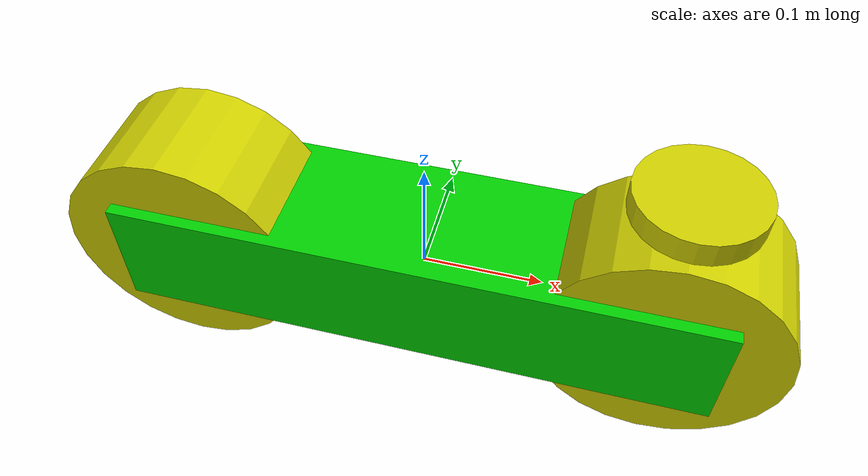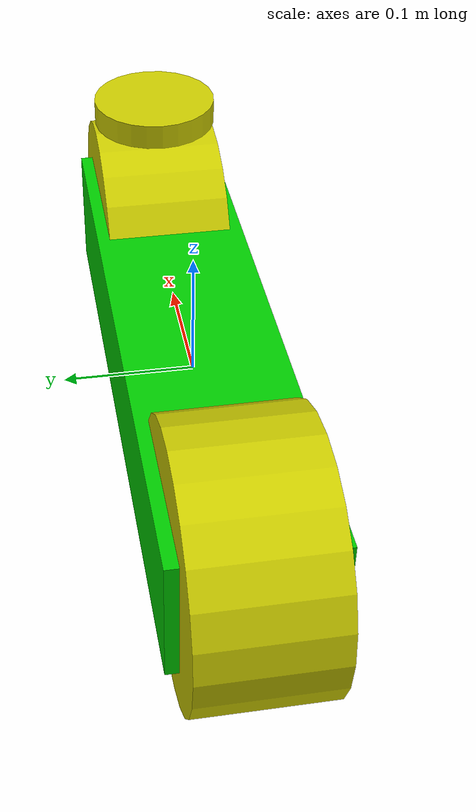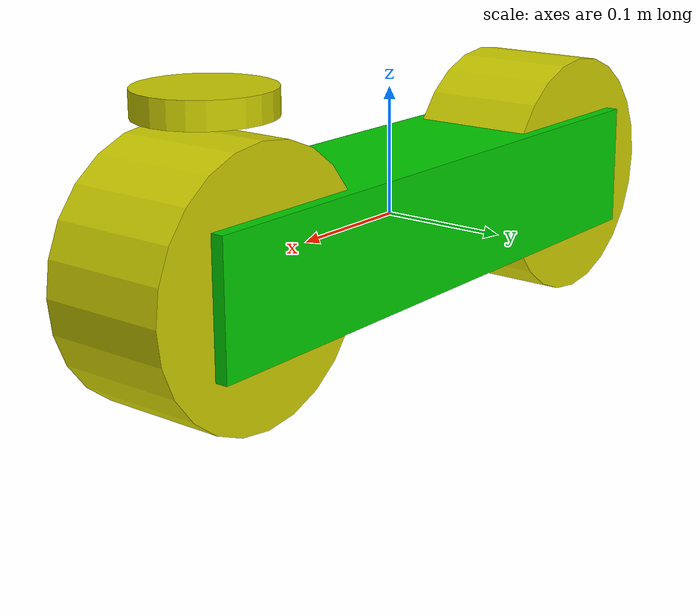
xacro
<?xml version="1.0"?>
<!-- source: https://github.com/srmainwaring/steer_bot/blob/master/steer_bot_description/urdf/wheel.xacro: -->

<robot name="bicycle" xmlns:xacro="http://wiki.ros.org/xacro">

  <!-- Include xacro for inertials, materials and wheels -->
  <xacro:include filename="$(find robotrendszerek_projekt)/urdf/wheel.xacro"/>

  <xacro:property name="robot_namespace" value="/bicycle"/>

  <!-- Gazebo plugins -->
  <gazebo>
    <!-- Load ros_control plugin -->
    <plugin name="gazebo_ros_control" filename="libgazebo_ros_control.so">
      <robotNamespace>${robot_namespace}</robotNamespace>
      <robotSimType>gazebo_ros_control/DefaultRobotHWSim</robotSimType>
      <legacyModeNS>false</legacyModeNS>
    </plugin>

    <!-- Load gazebo_ros plugin. Publish passive (non-actuated) joints from Gazebo -->
    <plugin name="gazebo_ros_joint_state_publisher" filename="libgazebo_ros_joint_state_publisher.so">
        <robotNamespace>${robot_namespace}</robotNamespace>
        <jointName>
            front_wheel_joint
        </jointName>
        <updateRate>50</updateRate>
        <alwaysOn>true</alwaysOn>
    </plugin>
  </gazebo>

  <!-- Math constants -->
  <xacro:property name="deg_to_rad" value="0.01745329251994329577"/>

  <!-- Robot base dimensions -->
  <xacro:property name="base_length" value="0.5" />
  <xacro:property name="base_width" value="0.12" />
  <xacro:property name="base_height" value="0.1" />
  <xacro:property name="base_mass" value="5" />

  <!-- Wheel link dimensions -->
  <xacro:property name="wheel_radius" value="0.1" />
  <xacro:property name="wheel_thickness" value="0.1" />
  <xacro:property name="wheel_mass" value="1" />

  <!-- Steering link dimensions -->
  <xacro:property name="steer_radius" value="0.05" />
  <xacro:property name="steer_thickness" value="0.02" />
  <xacro:property name="steer_mass" value="1" />

  <!-- Axle positions -->
  <xacro:property name="axle_offset" value="0.05" />
  <xacro:property name="steer_offset" value="0.02" />

  <!-- Base link -->
  <link name="base_link">
    <visual>
      <origin xyz="0 0 0" rpy="0 0 0"/>
      <geometry>
        <box size="${base_length} ${base_width} ${base_height}"/>
      </geometry>
      <material name="green" />
    </visual>
    <collision>
      <origin xyz="0 0 0" rpy="0 0 0"/>
      <geometry>
        <box size="${base_length} ${base_width} ${base_height}"/>
      </geometry>
    </collision>
    <xacro:solid_cuboid_inertial
        rpy="0 0 0" xyz="0 0 0"
        mass="${base_mass}"
        x="${base_length}" y="${base_width}" z="${base_height}" />
  </link>

  <!-- Front steer and rear wheel joints required for ackermann_steering_controller -->
  <xacro:front_steer
    name="front"
    parent="base"
    steer_radius="${steer_radius}"
    steer_thickness="${steer_thickness}"
    steer_mass="${steer_mass}"
    base_length="${base_length}"
    base_width="${base_width}"
    axle_offset="${axle_offset}"
    steer_height="${wheel_radius+steer_offset}">
  </xacro:front_steer>

  <xacro:front_wheel
    name="front"
    parent="front_steer"
    wheel_radius="${wheel_radius}"
    wheel_thickness="${wheel_thickness}"
    wheel_mass="${wheel_mass}">
    <origin xyz="0 0 ${-wheel_radius-steer_offset}" rpy="${-90 * deg_to_rad} 0 0"/>
  </xacro:front_wheel>

  <xacro:rear_wheel
    name="rear"
    parent="base"
    wheel_radius="${wheel_radius}"
    wheel_thickness="${wheel_thickness}"
    wheel_mass="${wheel_mass}">
    <origin xyz="${-base_length/2+axle_offset} 0 0" rpy="${-90 * deg_to_rad} 0 0"/>
  </xacro:rear_wheel>

  <!-- Colour -->
  <gazebo reference="base_link">
    <material>Gazebo/Green</material>
  </gazebo>

</robot>

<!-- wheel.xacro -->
<!-- source: https://github.com/srmainwaring/steer_bot/blob/master/steer_bot_description/urdf/wheel.xacro: -->

<robot name="wheel" xmlns:xacro="http://wiki.ros.org/xacro">
  <!-- Include xacro for materials and inertials -->
  <xacro:include filename="$(find race_car_description)/urdf/materials.xacro"/>
  <xacro:include filename="$(find race_car_description)/urdf/inertials.xacro"/>

  <!-- Properties -->
  <xacro:property name="steer_effort" value="10.0"/>
  <xacro:property name="steer_velocity" value="5.0"/>
  <xacro:property name="steer_limit_deg" value="45.0"/>

  <!-- Bicycle model front steering link (required for steer_drive_controller) -->
  <xacro:macro name="front_steer"
    params="
      name
      parent
      steer_radius
      steer_thickness
      steer_mass
      base_length
      base_width
      axle_offset
      steer_height">
    <link name="${name}_steer_link">
      <visual>
        <origin xyz="0 0 0" rpy="0 0 0"/>
        <geometry>
          <cylinder radius="${steer_radius}" length="${steer_thickness}"/>
        </geometry>
        <material name="yellow" />
      </visual>
      <collision>
        <origin xyz="0 0 0" rpy="0 0 0"/>
        <geometry>
          <cylinder radius="${steer_radius}" length="${steer_thickness}"/>
        </geometry>
      </collision>
      <xacro:solid_cylinder_inertial
          rpy="0 0 0" xyz="0 0 0"
          mass="${steer_mass}"
          radius="${steer_radius}" length="${steer_thickness}" />
    </link>

    <joint name="${name}_steer_joint" type="revolute">
      <parent link="${parent}_link"/>
      <child link="${name}_steer_link"/>
      <origin xyz="${base_length/2-axle_offset} 0 ${steer_height}" rpy="0 0 0"/>
      <axis xyz="0 0 1"/>
      <limit effort="${steer_effort}"
             lower="${-180.0 * deg_to_rad}" upper="${180.0 * deg_to_rad}"
             velocity="${steer_velocity}"/>
    </joint>

    <gazebo reference="${name}_steer_link">
      <material>Gazebo/Yellow</material>
    </gazebo>
  </xacro:macro>

  <!-- Car steering model front (steerable) wheel links (left/right) -->
  <xacro:macro name="front_wheel_lr"
    params="
      name
      parent
      reflect
      wheel_radius
      wheel_thickness
      wheel_mass
      steer_radius
      steer_thickness
      steer_mass
      base_length
      base_width
      axle_offset
      steer_height
      axle_height">
    <link name="${name}_steer_link">
      <visual>
        <origin xyz="0 0 0" rpy="0 0 0"/>
        <geometry>
          <cylinder radius="${steer_radius}" length="${steer_thickness}"/>
        </geometry>
        <material name="blue" />
      </visual>
      <collision>
        <origin xyz="0 0 0" rpy="0 0 0"/>
        <geometry>
          <cylinder radius="${steer_radius}" length="${steer_thickness}"/>
        </geometry>
      </collision>
      <xacro:solid_cylinder_inertial
          rpy="0 0 0" xyz="0 0 0"
          mass="${steer_mass}"
          radius="${steer_radius}" length="${steer_thickness}" />
    </link>

    <joint name="${name}_steer_joint" type="revolute">
      <parent link="${parent}_link"/>
      <child link="${name}_steer_link"/>
      <origin xyz="${base_length/2-axle_offset} ${reflect*(base_width/2+wheel_thickness/2)} ${steer_height}" rpy="0 0 0"/>
      <axis xyz="0 0 1"/>
      <limit effort="${steer_effort}"
             lower="${steer_limit_deg * deg_to_rad * -1.0}" upper="${steer_limit_deg * deg_to_rad}"
             velocity="${steer_velocity}"/>
    </joint>

    <link name="${name}_wheel_link">
      <visual>
        <origin xyz="0 0 0" rpy="0 0 0"/>
        <geometry>
          <cylinder radius="${wheel_radius}" length="${wheel_thickness}"/>
        </geometry>
        <material name="red" />
      </visual>
      <collision>
        <origin xyz="0 0 0" rpy="0 0 0"/>
        <geometry>
          <cylinder radius="${wheel_radius}" length="${wheel_thickness}"/>
        </geometry>
      </collision>
      <xacro:solid_cylinder_inertial
          rpy="0 0 0" xyz="0 0 0"
          mass="${wheel_mass}"
          radius="${wheel_radius}" length="${wheel_thickness}" />
    </link>

    <joint name="${name}_wheel_joint" type="continuous">
      <parent link="${name}_steer_link"/>
      <child link="${name}_wheel_link"/>
      <origin xyz="0 0 ${-steer_height + axle_height}" rpy="${-90 * deg_to_rad} 0 0"/>
      <axis xyz="0 0 1"/>
    </joint>

    <gazebo reference="${name}_steer_link">
      <material>Gazebo/Blue</material>
    </gazebo>

    <gazebo reference="${name}_wheel_link">
      <material>Gazebo/Red</material>
      <mu1 value="1.0"/>
			<mu2 value="1.0"/>
			<kp value="10000000.0" />
			<kd value="1.0" />
			<fdir1 value="1 0 0"/>
    </gazebo>
  </xacro:macro>

  <!-- Bicycle model rear wheel link (required for steer_drive_controller) -->
  <xacro:macro name="rear_wheel"
    params="
      name
      parent
      wheel_radius
      wheel_thickness
      wheel_mass
      *origin">
    <link name="${name}_wheel_link">
      <visual>
        <origin xyz="0 0 0" rpy="0 0 0"/>
        <geometry>
          <cylinder radius="${wheel_radius}" length="${wheel_thickness}"/>
        </geometry>
        <material name="yellow" />
      </visual>
      <collision>
        <origin xyz="0 0 0" rpy="0 0 0"/>
        <geometry>
          <cylinder radius="${wheel_radius}" length="${wheel_thickness}"/>
        </geometry>
      </collision>
      <xacro:solid_cylinder_inertial
          rpy="0 0 0" xyz="0 0 0"
          mass="${wheel_mass}"
          radius="${wheel_radius}" length="${wheel_thickness}" />
    </link>

    <joint name="${name}_wheel_joint" type="continuous">
      <parent link="${parent}_link"/>
      <child link="${name}_wheel_link"/>
      <xacro:insert_block name="origin"/>
      <axis xyz="0 0 1"/>
    </joint>

    <gazebo reference="${name}_wheel_link">
      <material>Gazebo/Yellow</material>
    </gazebo>
  </xacro:macro>

  <!-- Bicycle model front wheel link (passive - no transmission) -->
  <xacro:macro name="front_wheel"
    params="
      name
      parent
      wheel_radius
      wheel_thickness
      wheel_mass
      *origin">
    <link name="${name}_wheel_link">
      <visual>
        <origin xyz="0 0 0" rpy="0 0 0"/>
        <geometry>
          <cylinder radius="${wheel_radius}" length="${wheel_thickness}"/>
        </geometry>
        <material name="yellow" />
      </visual>
      <collision>
        <origin xyz="0 0 0" rpy="0 0 0"/>
        <geometry>
          <cylinder radius="${wheel_radius}" length="${wheel_thickness}"/>
        </geometry>
      </collision>
      <xacro:solid_cylinder_inertial
          rpy="0 0 0" xyz="0 0 0"
          mass="${wheel_mass}"
          radius="${wheel_radius}" length="${wheel_thickness}" />
    </link>

    <joint name="${name}_wheel_joint" type="continuous">
      <parent link="${parent}_link"/>
      <child link="${name}_wheel_link"/>
      <xacro:insert_block name="origin"/>
      <axis xyz="0 0 1"/>
    </joint>

    <gazebo reference="${name}_wheel_link">
      <material>Gazebo/Yellow</material>
    </gazebo>

    <gazebo reference="${name}_wheel_joint">
      <provideFeedback>true</provideFeedback>
    </gazebo>
  </xacro:macro>

  <!-- Car steering model rear wheel links (left/right) -->
  <xacro:macro name="rear_wheel_lr"
    params="
      name
      parent
      wheel_radius
      wheel_thickness
      wheel_mass
      *origin">
    <link name="${name}_wheel_link">
      <visual>
        <origin xyz="0 0 0" rpy="0 0 0"/>
        <geometry>
          <cylinder radius="${wheel_radius}" length="${wheel_thickness}"/>
        </geometry>
        <material name="red" />
      </visual>
      <collision>
        <origin xyz="0 0 0" rpy="0 0 0"/>
        <geometry>
          <cylinder radius="${wheel_radius}" length="${wheel_thickness}"/>
        </geometry>
      </collision>
      <xacro:solid_cylinder_inertial
          rpy="0 0 0" xyz="0 0 0"
          mass="${wheel_mass}"
          radius="${wheel_radius}" length="${wheel_thickness}" />
    </link>

    <joint name="${name}_wheel_joint" type="continuous">
      <parent link="${parent}_link"/>
      <child link="${name}_wheel_link"/>
      <xacro:insert_block name="origin"/>
      <axis xyz="0 0 1"/>
    </joint>

    <gazebo reference="${name}_wheel_link">
      <material>Gazebo/Red</material>
      <mu1 value="1.0"/>
			<mu2 value="1.0"/>
			<kp value="10000000.0" />
			<kd value="1.0" />
			<fdir1 value="1 0 0"/>
    </gazebo>
  </xacro:macro>
</robot>

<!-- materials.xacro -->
<robot>

  <material name="black">
    <color rgba="0.0 0.0 0.0 1.0"/>
  </material>

  <material name="dark_gray">
      <color rgba="0.5 0.5 0.5 1"/>
  </material>

  <material name="gray">
      <color rgba="0.753 0.753 0.753 1"/>
  </material>

  <material name="silver">
      <color rgba="0.88 0.88 0.88 1"/>
  </material>

  <material name="white">
    <color rgba="1.0 1.0 1.0 1.0"/>
  </material>

  <material name="red">
    <color rgba="0.8 0.0 0.0 1.0"/>
  </material>

  <material name="green">
    <color rgba="0.0 0.8 0.0 1.0"/>
  </material>

  <material name="blue">
    <color rgba="0.0 0.0 0.8 1.0"/>
  </material>

  <material name="orange">
    <color rgba="${255/255} ${108/255} ${10/255} 1.0"/>
  </material>

  <material name="yellow">
    <color rgba="${204/255} ${204/255} ${0/255} 1"/>
  </material>

  <material name="brown">
    <color rgba="${222/255} ${207/255} ${195/255} 1.0"/>
  </material>

</robot>

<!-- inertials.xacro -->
<!-- source: https://github.com/srmainwaring/steer_bot/blob/master/steer_bot_description/urdf/inertials.xacro: -->

<!--  xacro macros for inertials.

    Define xacro macros for math constants and inertials:

    - solid cuboid
    - solid cylinder
    - null (a placeholder inertial for logical link elements)
 -->

<robot name="inertials" xmlns:xacro="http://wiki.ros.org/xacro">

    <!-- Math constants -->
    <xacro:property name="math_pi"        value="3.141592653589793" />
    <xacro:property name="math_pi_over_2" value="1.5707963267948966" />
    <xacro:property name="math_pi_over_4" value="0.785398163397448" />

    <!-- Inertial for solid cuboid with dimensions x y z  -->
    <xacro:macro name="solid_cuboid_inertial" params="rpy xyz mass x y z">
        <inertial>
            <origin rpy="${rpy}" xyz="${xyz}"/>
            <mass value="${mass}" />
            <inertia
                ixx="${mass * (y * y + z * z) / 12.0}" ixy="0.0" ixz="0.0"
                iyy="${mass * (x * x + z * z) / 12.0}" iyz="0.0"
                izz="${mass * (x * x + y * y) / 12.0}" />
        </inertial>
    </xacro:macro>

    <!-- Inertial for solid cylinder with radius and length aligned to z-axis  -->
    <xacro:macro name="solid_cylinder_inertial" params="rpy xyz mass radius length">
        <inertial>
            <origin rpy="${rpy}" xyz="${xyz}"/>
            <mass value="${mass}" />
            <inertia
                ixx="${mass * (3.0 * radius * radius + length * length) / 12.0}" ixy="0.0" ixz="0.0"
                iyy="${mass * (3.0 * radius * radius + length * length) / 12.0}" iyz="0.0"
                izz="${mass * (radius * radius) / 2.0}" />
        </inertial>
    </xacro:macro>

    <!-- A null inertial - used in placeholder links to esure the model will work in Gazebo -->
    <xacro:macro name="null_inertial">
        <inertial>
            <mass value="0.001"/>
            <inertia ixx="0.001" ixy="0" ixz="0" iyy="0.001" iyz="0" izz="0.001"/>
        </inertial>
    </xacro:macro>
</robot>
